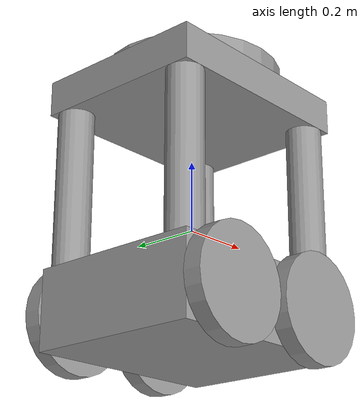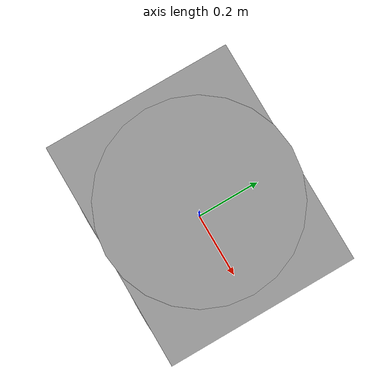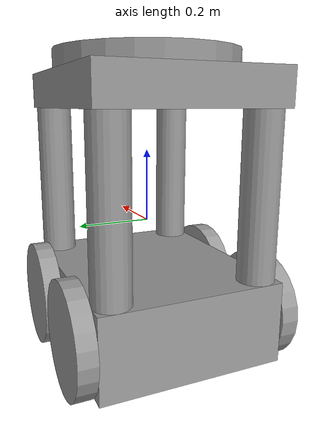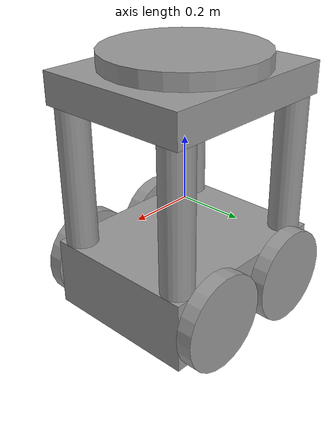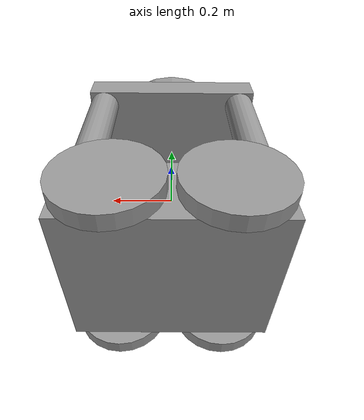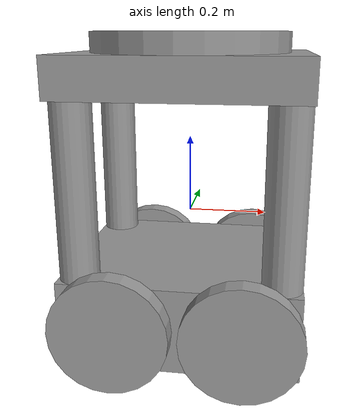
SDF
<?xml version='1.0'?>
<sdf version='1.6'>
  <model name='exp_robot'>
    <link name='link_0'>
      <pose frame=''>-0 -0 -0.235909 0 -0 0</pose>
      <inertial>
        <mass>1</mass>
        <inertia>
          <ixx>0.166667</ixx>
          <ixy>0</ixy>
          <ixz>0</ixz>
          <iyy>0.166667</iyy>
          <iyz>0</iyz>
          <izz>0.166667</izz>
        </inertia>
        <pose frame=''>0 0 0 0 -0 0</pose>
      </inertial>
      <self_collide>0</self_collide>
      <kinematic>0</kinematic>
      <gravity>1</gravity>
      <visual name='visual'>
        <pose frame=''>0 0 0 0 -0 0</pose>
        <geometry>
          <box>
            <size>0.6 0.5 0.22</size>
          </box>
        </geometry>
        <material>
          <lighting>1</lighting>
          <script>
            <uri>file://media/materials/scripts/gazebo.material</uri>
            <name>Gazebo/Grey</name>
          </script>
          <ambient>0.1 0.1 0.1 1</ambient>
          <diffuse>0.7 0.7 0.7 1</diffuse>
          <specular>0.01 0.01 0.01 1</specular>
          <emissive>0 0 0 1</emissive>
          <shader type='vertex'>
            <normal_map>__default__</normal_map>
          </shader>
        </material>
        <transparency>0</transparency>
        <cast_shadows>1</cast_shadows>
      </visual>
      <collision name='collision'>
        <laser_retro>0</laser_retro>
        <max_contacts>10</max_contacts>
        <pose frame=''>0 0 0 0 -0 0</pose>
        <geometry>
          <box>
            <size>0.6 0.5 0.22</size>
          </box>
        </geometry>
        <surface>
          <friction>
            <ode>
              <mu>1</mu>
              <mu2>1</mu2>
              <fdir1>0 0 0</fdir1>
              <slip1>0</slip1>
              <slip2>0</slip2>
            </ode>
            <torsional>
              <coefficient>1</coefficient>
              <patch_radius>0</patch_radius>
              <surface_radius>0</surface_radius>
              <use_patch_radius>1</use_patch_radius>
              <ode>
                <slip>0</slip>
              </ode>
            </torsional>
          </friction>
          <bounce>
            <restitution_coefficient>0</restitution_coefficient>
            <threshold>1e+06</threshold>
          </bounce>
          <contact>
            <collide_without_contact>0</collide_without_contact>
            <collide_without_contact_bitmask>1</collide_without_contact_bitmask>
            <collide_bitmask>1</collide_bitmask>
            <ode>
              <soft_cfm>0</soft_cfm>
              <soft_erp>0.2</soft_erp>
              <kp>1e+13</kp>
              <kd>1</kd>
              <max_vel>0.01</max_vel>
              <min_depth>0</min_depth>
            </ode>
            <bullet>
              <split_impulse>1</split_impulse>
              <split_impulse_penetration_threshold>-0.01</split_impulse_penetration_threshold>
              <soft_cfm>0</soft_cfm>
              <soft_erp>0.2</soft_erp>
              <kp>1e+13</kp>
              <kd>1</kd>
            </bullet>
          </contact>
        </surface>
      </collision>
    </link>
    <link name='link_0_clone'>
      <pose frame=''>0 -0 0.364091 0 -0 0</pose>
      <inertial>
        <mass>1</mass>
        <inertia>
          <ixx>0.166667</ixx>
          <ixy>0</ixy>
          <ixz>0</ixz>
          <iyy>0.166667</iyy>
          <iyz>0</iyz>
          <izz>0.166667</izz>
        </inertia>
        <pose frame=''>0 0 0 0 -0 0</pose>
      </inertial>
      <self_collide>0</self_collide>
      <kinematic>0</kinematic>
      <visual name='visual'>
        <pose frame=''>0 0 0 0 -0 0</pose>
        <geometry>
          <box>
            <size>0.6 0.5 0.1</size>
          </box>
        </geometry>
        <material>
          <lighting>1</lighting>
          <script>
            <uri>file://media/materials/scripts/gazebo.material</uri>
            <name>Gazebo/Grey</name>
          </script>
          <ambient>0.3 0.3 0.3 1</ambient>
          <diffuse>0.7 0.7 0.7 1</diffuse>
          <specular>0.01 0.01 0.01 1</specular>
          <emissive>0 0 0 1</emissive>
          <shader type='vertex'>
            <normal_map>__default__</normal_map>
          </shader>
        </material>
        <transparency>0</transparency>
        <cast_shadows>1</cast_shadows>
      </visual>
      <collision name='collision'>
        <laser_retro>0</laser_retro>
        <max_contacts>10</max_contacts>
        <pose frame=''>0 0 0 0 -0 0</pose>
        <geometry>
          <box>
            <size>0.6 0.5 0.1</size>
          </box>
        </geometry>
        <surface>
          <friction>
            <ode>
              <mu>1</mu>
              <mu2>1</mu2>
              <fdir1>0 0 0</fdir1>
              <slip1>0</slip1>
              <slip2>0</slip2>
            </ode>
            <torsional>
              <coefficient>1</coefficient>
              <patch_radius>0</patch_radius>
              <surface_radius>0</surface_radius>
              <use_patch_radius>1</use_patch_radius>
              <ode>
                <slip>0</slip>
              </ode>
            </torsional>
          </friction>
          <bounce>
            <restitution_coefficient>0</restitution_coefficient>
            <threshold>1e+06</threshold>
          </bounce>
          <contact>
            <collide_without_contact>0</collide_without_contact>
            <collide_without_contact_bitmask>1</collide_without_contact_bitmask>
            <collide_bitmask>1</collide_bitmask>
            <ode>
              <soft_cfm>0</soft_cfm>
              <soft_erp>0.2</soft_erp>
              <kp>1e+13</kp>
              <kd>1</kd>
              <max_vel>0.01</max_vel>
              <min_depth>0</min_depth>
            </ode>
            <bullet>
              <split_impulse>1</split_impulse>
              <split_impulse_penetration_threshold>-0.01</split_impulse_penetration_threshold>
              <soft_cfm>0</soft_cfm>
              <soft_erp>0.2</soft_erp>
              <kp>1e+13</kp>
              <kd>1</kd>
            </bullet>
          </contact>
        </surface>
      </collision>
    </link>
    <link name='link_1'>
      <pose frame=''>-0.25 0.2 0.094091 0 -0 0</pose>
      <inertial>
        <mass>1</mass>
        <inertia>
          <ixx>0.145833</ixx>
          <ixy>0</ixy>
          <ixz>0</ixz>
          <iyy>0.145833</iyy>
          <iyz>0</iyz>
          <izz>0.125</izz>
        </inertia>
        <pose frame=''>0 0 0 0 -0 0</pose>
      </inertial>
      <self_collide>0</self_collide>
      <kinematic>0</kinematic>
      <visual name='visual'>
        <pose frame=''>0 0 0 0 -0 0</pose>
        <geometry>
          <cylinder>
            <radius>0.05</radius>
            <length>0.44</length>
          </cylinder>
        </geometry>
        <material>
          <lighting>1</lighting>
          <script>
            <uri>file://media/materials/scripts/gazebo.material</uri>
            <name>Gazebo/Grey</name>
          </script>
          <ambient>0.3 0.3 0.3 1</ambient>
          <diffuse>0.7 0.7 0.7 1</diffuse>
          <specular>0.01 0.01 0.01 1</specular>
          <emissive>0 0 0 1</emissive>
          <shader type='vertex'>
            <normal_map>__default__</normal_map>
          </shader>
        </material>
        <transparency>0</transparency>
        <cast_shadows>1</cast_shadows>
      </visual>
      <collision name='collision'>
        <laser_retro>0</laser_retro>
        <max_contacts>10</max_contacts>
        <pose frame=''>0 0 0 0 -0 0</pose>
        <geometry>
          <cylinder>
            <radius>0.05</radius>
            <length>0.44</length>
          </cylinder>
        </geometry>
        <surface>
          <friction>
            <ode>
              <mu>1</mu>
              <mu2>1</mu2>
              <fdir1>0 0 0</fdir1>
              <slip1>0</slip1>
              <slip2>0</slip2>
            </ode>
            <torsional>
              <coefficient>1</coefficient>
              <patch_radius>0</patch_radius>
              <surface_radius>0</surface_radius>
              <use_patch_radius>1</use_patch_radius>
              <ode>
                <slip>0</slip>
              </ode>
            </torsional>
          </friction>
          <bounce>
            <restitution_coefficient>0</restitution_coefficient>
            <threshold>1e+06</threshold>
          </bounce>
          <contact>
            <collide_without_contact>0</collide_without_contact>
            <collide_without_contact_bitmask>1</collide_without_contact_bitmask>
            <collide_bitmask>1</collide_bitmask>
            <ode>
              <soft_cfm>0</soft_cfm>
              <soft_erp>0.2</soft_erp>
              <kp>1e+13</kp>
              <kd>1</kd>
              <max_vel>0.01</max_vel>
              <min_depth>0</min_depth>
            </ode>
            <bullet>
              <split_impulse>1</split_impulse>
              <split_impulse_penetration_threshold>-0.01</split_impulse_penetration_threshold>
              <soft_cfm>0</soft_cfm>
              <soft_erp>0.2</soft_erp>
              <kp>1e+13</kp>
              <kd>1</kd>
            </bullet>
          </contact>
        </surface>
      </collision>
    </link>
    <link name='link_1_clone'>
      <pose frame=''>-0.25 -0.2 0.094091 0 -0 0</pose>
      <inertial>
        <mass>1</mass>
        <inertia>
          <ixx>0.145833</ixx>
          <ixy>0</ixy>
          <ixz>0</ixz>
          <iyy>0.145833</iyy>
          <iyz>0</iyz>
          <izz>0.125</izz>
        </inertia>
        <pose frame=''>0 0 0 0 -0 0</pose>
      </inertial>
      <self_collide>0</self_collide>
      <kinematic>0</kinematic>
      <visual name='visual'>
        <pose frame=''>0 0 0 0 -0 0</pose>
        <geometry>
          <cylinder>
            <radius>0.05</radius>
            <length>0.44</length>
          </cylinder>
        </geometry>
        <material>
          <lighting>1</lighting>
          <script>
            <uri>file://media/materials/scripts/gazebo.material</uri>
            <name>Gazebo/Grey</name>
          </script>
          <ambient>0.3 0.3 0.3 1</ambient>
          <diffuse>0.7 0.7 0.7 1</diffuse>
          <specular>0.01 0.01 0.01 1</specular>
          <emissive>0 0 0 1</emissive>
          <shader type='vertex'>
            <normal_map>__default__</normal_map>
          </shader>
        </material>
        <transparency>0</transparency>
        <cast_shadows>1</cast_shadows>
      </visual>
      <collision name='collision'>
        <laser_retro>0</laser_retro>
        <max_contacts>10</max_contacts>
        <pose frame=''>0 0 0 0 -0 0</pose>
        <geometry>
          <cylinder>
            <radius>0.05</radius>
            <length>0.44</length>
          </cylinder>
        </geometry>
        <surface>
          <friction>
            <ode>
              <mu>1</mu>
              <mu2>1</mu2>
              <fdir1>0 0 0</fdir1>
              <slip1>0</slip1>
              <slip2>0</slip2>
            </ode>
            <torsional>
              <coefficient>1</coefficient>
              <patch_radius>0</patch_radius>
              <surface_radius>0</surface_radius>
              <use_patch_radius>1</use_patch_radius>
              <ode>
                <slip>0</slip>
              </ode>
            </torsional>
          </friction>
          <bounce>
            <restitution_coefficient>0</restitution_coefficient>
            <threshold>1e+06</threshold>
          </bounce>
          <contact>
            <collide_without_contact>0</collide_without_contact>
            <collide_without_contact_bitmask>1</collide_without_contact_bitmask>
            <collide_bitmask>1</collide_bitmask>
            <ode>
              <soft_cfm>0</soft_cfm>
              <soft_erp>0.2</soft_erp>
              <kp>1e+13</kp>
              <kd>1</kd>
              <max_vel>0.01</max_vel>
              <min_depth>0</min_depth>
            </ode>
            <bullet>
              <split_impulse>1</split_impulse>
              <split_impulse_penetration_threshold>-0.01</split_impulse_penetration_threshold>
              <soft_cfm>0</soft_cfm>
              <soft_erp>0.2</soft_erp>
              <kp>1e+13</kp>
              <kd>1</kd>
            </bullet>
          </contact>
        </surface>
      </collision>
    </link>
    <link name='link_1_clone_0'>
      <pose frame=''>0.25 -0.2 0.094091 0 -0 0</pose>
      <inertial>
        <mass>1</mass>
        <inertia>
          <ixx>0.145833</ixx>
          <ixy>0</ixy>
          <ixz>0</ixz>
          <iyy>0.145833</iyy>
          <iyz>0</iyz>
          <izz>0.125</izz>
        </inertia>
        <pose frame=''>0 0 0 0 -0 0</pose>
      </inertial>
      <self_collide>0</self_collide>
      <kinematic>0</kinematic>
      <visual name='visual'>
        <pose frame=''>0 0 0 0 -0 0</pose>
        <geometry>
          <cylinder>
            <radius>0.05</radius>
            <length>0.44</length>
          </cylinder>
        </geometry>
        <material>
          <lighting>1</lighting>
          <script>
            <uri>file://media/materials/scripts/gazebo.material</uri>
            <name>Gazebo/Grey</name>
          </script>
          <ambient>0.3 0.3 0.3 1</ambient>
          <diffuse>0.7 0.7 0.7 1</diffuse>
          <specular>0.01 0.01 0.01 1</specular>
          <emissive>0 0 0 1</emissive>
          <shader type='vertex'>
            <normal_map>__default__</normal_map>
          </shader>
        </material>
        <transparency>0</transparency>
        <cast_shadows>1</cast_shadows>
      </visual>
      <collision name='collision'>
        <laser_retro>0</laser_retro>
        <max_contacts>10</max_contacts>
        <pose frame=''>0 0 0 0 -0 0</pose>
        <geometry>
          <cylinder>
            <radius>0.05</radius>
            <length>0.44</length>
          </cylinder>
        </geometry>
        <surface>
          <friction>
            <ode>
              <mu>1</mu>
              <mu2>1</mu2>
              <fdir1>0 0 0</fdir1>
              <slip1>0</slip1>
              <slip2>0</slip2>
            </ode>
            <torsional>
              <coefficient>1</coefficient>
              <patch_radius>0</patch_radius>
              <surface_radius>0</surface_radius>
              <use_patch_radius>1</use_patch_radius>
              <ode>
                <slip>0</slip>
              </ode>
            </torsional>
          </friction>
          <bounce>
            <restitution_coefficient>0</restitution_coefficient>
            <threshold>1e+06</threshold>
          </bounce>
          <contact>
            <collide_without_contact>0</collide_without_contact>
            <collide_without_contact_bitmask>1</collide_without_contact_bitmask>
            <collide_bitmask>1</collide_bitmask>
            <ode>
              <soft_cfm>0</soft_cfm>
              <soft_erp>0.2</soft_erp>
              <kp>1e+13</kp>
              <kd>1</kd>
              <max_vel>0.01</max_vel>
              <min_depth>0</min_depth>
            </ode>
            <bullet>
              <split_impulse>1</split_impulse>
              <split_impulse_penetration_threshold>-0.01</split_impulse_penetration_threshold>
              <soft_cfm>0</soft_cfm>
              <soft_erp>0.2</soft_erp>
              <kp>1e+13</kp>
              <kd>1</kd>
            </bullet>
          </contact>
        </surface>
      </collision>
    </link>
    <link name='link_1_clone_1'>
      <pose frame=''>0.25 0.2 0.094091 0 -0 0</pose>
      <inertial>
        <mass>1</mass>
        <inertia>
          <ixx>0.145833</ixx>
          <ixy>0</ixy>
          <ixz>0</ixz>
          <iyy>0.145833</iyy>
          <iyz>0</iyz>
          <izz>0.125</izz>
        </inertia>
        <pose frame=''>0 0 0 0 -0 0</pose>
      </inertial>
      <self_collide>0</self_collide>
      <kinematic>0</kinematic>
      <visual name='visual'>
        <pose frame=''>0 0 0 0 -0 0</pose>
        <geometry>
          <cylinder>
            <radius>0.05</radius>
            <length>0.44</length>
          </cylinder>
        </geometry>
        <material>
          <lighting>1</lighting>
          <script>
            <uri>file://media/materials/scripts/gazebo.material</uri>
            <name>Gazebo/Grey</name>
          </script>
          <ambient>0.3 0.3 0.3 1</ambient>
          <diffuse>0.7 0.7 0.7 1</diffuse>
          <specular>0.01 0.01 0.01 1</specular>
          <emissive>0 0 0 1</emissive>
          <shader type='vertex'>
            <normal_map>__default__</normal_map>
          </shader>
        </material>
        <transparency>0</transparency>
        <cast_shadows>1</cast_shadows>
      </visual>
      <collision name='collision'>
        <laser_retro>0</laser_retro>
        <max_contacts>10</max_contacts>
        <pose frame=''>0 0 0 0 -0 0</pose>
        <geometry>
          <cylinder>
            <radius>0.05</radius>
            <length>0.44</length>
          </cylinder>
        </geometry>
        <surface>
          <friction>
            <ode>
              <mu>1</mu>
              <mu2>1</mu2>
              <fdir1>0 0 0</fdir1>
              <slip1>0</slip1>
              <slip2>0</slip2>
            </ode>
            <torsional>
              <coefficient>1</coefficient>
              <patch_radius>0</patch_radius>
              <surface_radius>0</surface_radius>
              <use_patch_radius>1</use_patch_radius>
              <ode>
                <slip>0</slip>
              </ode>
            </torsional>
          </friction>
          <bounce>
            <restitution_coefficient>0</restitution_coefficient>
            <threshold>1e+06</threshold>
          </bounce>
          <contact>
            <collide_without_contact>0</collide_without_contact>
            <collide_without_contact_bitmask>1</collide_without_contact_bitmask>
            <collide_bitmask>1</collide_bitmask>
            <ode>
              <soft_cfm>0</soft_cfm>
              <soft_erp>0.2</soft_erp>
              <kp>1e+13</kp>
              <kd>1</kd>
              <max_vel>0.01</max_vel>
              <min_depth>0</min_depth>
            </ode>
            <bullet>
              <split_impulse>1</split_impulse>
              <split_impulse_penetration_threshold>-0.01</split_impulse_penetration_threshold>
              <soft_cfm>0</soft_cfm>
              <soft_erp>0.2</soft_erp>
              <kp>1e+13</kp>
              <kd>1</kd>
            </bullet>
          </contact>
        </surface>
      </collision>
    </link>
    <link name='link_2'>
      <pose frame=''>-0 0 0.439091 0 -0 0</pose>
      <inertial>
        <mass>1</mass>
        <inertia>
          <ixx>0.145833</ixx>
          <ixy>0</ixy>
          <ixz>0</ixz>
          <iyy>0.145833</iyy>
          <iyz>0</iyz>
          <izz>0.125</izz>
        </inertia>
        <pose frame=''>0 0 0 0 -0 0</pose>
      </inertial>
      <self_collide>0</self_collide>
      <kinematic>0</kinematic>
      <visual name='visual'>
        <pose frame=''>0 0 0 0 -0 0</pose>
        <geometry>
          <cylinder>
            <radius>0.25</radius>
            <length>0.05</length>
          </cylinder>
        </geometry>
        <material>
          <lighting>1</lighting>
          <script>
            <uri>file://media/materials/scripts/gazebo.material</uri>
            <name>Gazebo/Grey</name>
          </script>
          <ambient>0.3 0.3 0.3 1</ambient>
          <diffuse>0.7 0.7 0.7 1</diffuse>
          <specular>0.01 0.01 0.01 1</specular>
          <emissive>0 0 0 1</emissive>
          <shader type='vertex'>
            <normal_map>__default__</normal_map>
          </shader>
        </material>
        <transparency>0</transparency>
        <cast_shadows>1</cast_shadows>
      </visual>
      <collision name='collision'>
        <laser_retro>0</laser_retro>
        <max_contacts>10</max_contacts>
        <pose frame=''>0 0 0 0 -0 0</pose>
        <geometry>
          <cylinder>
            <radius>0.25</radius>
            <length>0.05</length>
          </cylinder>
        </geometry>
        <surface>
          <friction>
            <ode>
              <mu>1</mu>
              <mu2>1</mu2>
              <fdir1>0 0 0</fdir1>
              <slip1>0</slip1>
              <slip2>0</slip2>
            </ode>
            <torsional>
              <coefficient>1</coefficient>
              <patch_radius>0</patch_radius>
              <surface_radius>0</surface_radius>
              <use_patch_radius>1</use_patch_radius>
              <ode>
                <slip>0</slip>
              </ode>
            </torsional>
          </friction>
          <bounce>
            <restitution_coefficient>0</restitution_coefficient>
            <threshold>1e+06</threshold>
          </bounce>
          <contact>
            <collide_without_contact>0</collide_without_contact>
            <collide_without_contact_bitmask>1</collide_without_contact_bitmask>
            <collide_bitmask>1</collide_bitmask>
            <ode>
              <soft_cfm>0</soft_cfm>
              <soft_erp>0.2</soft_erp>
              <kp>1e+13</kp>
              <kd>1</kd>
              <max_vel>0.01</max_vel>
              <min_depth>0</min_depth>
            </ode>
            <bullet>
              <split_impulse>1</split_impulse>
              <split_impulse_penetration_threshold>-0.01</split_impulse_penetration_threshold>
              <soft_cfm>0</soft_cfm>
              <soft_erp>0.2</soft_erp>
              <kp>1e+13</kp>
              <kd>1</kd>
            </bullet>
          </contact>
        </surface>
      </collision>
    </link>
    <link name='link_3'>
      <pose frame=''>0.16 -0.275014 -0.235909 1.5707 -0 0</pose>
      <inertial>
        <mass>1</mass>
        <inertia>
          <ixx>0.145833</ixx>
          <ixy>0</ixy>
          <ixz>0</ixz>
          <iyy>0.145833</iyy>
          <iyz>0</iyz>
          <izz>0.125</izz>
        </inertia>
        <pose frame=''>0 0 0 0 -0 0</pose>
      </inertial>
      <self_collide>0</self_collide>
      <kinematic>0</kinematic>
      <visual name='visual'>
        <pose frame=''>0 0 0 0 -0 0</pose>
        <geometry>
          <cylinder>
            <radius>0.15</radius>
            <length>0.05</length>
          </cylinder>
        </geometry>
        <material>
          <lighting>1</lighting>
          <script>
            <uri>file://media/materials/scripts/gazebo.material</uri>
            <name>Gazebo/Grey</name>
          </script>
          <ambient>0.3 0.3 0.3 1</ambient>
          <diffuse>0.7 0.7 0.7 1</diffuse>
          <specular>0.01 0.01 0.01 1</specular>
          <emissive>0 0 0 1</emissive>
          <shader type='vertex'>
            <normal_map>__default__</normal_map>
          </shader>
        </material>
        <transparency>0</transparency>
        <cast_shadows>1</cast_shadows>
      </visual>
      <collision name='collision'>
        <laser_retro>0</laser_retro>
        <max_contacts>10</max_contacts>
        <pose frame=''>0 0 0 0 -0 0</pose>
        <geometry>
          <cylinder>
            <radius>0.15</radius>
            <length>0.05</length>
          </cylinder>
        </geometry>
        <surface>
          <friction>
            <ode>
              <mu>1</mu>
              <mu2>1</mu2>
              <fdir1>0 0 0</fdir1>
              <slip1>0</slip1>
              <slip2>0</slip2>
            </ode>
            <torsional>
              <coefficient>1</coefficient>
              <patch_radius>0</patch_radius>
              <surface_radius>0</surface_radius>
              <use_patch_radius>1</use_patch_radius>
              <ode>
                <slip>0</slip>
              </ode>
            </torsional>
          </friction>
          <bounce>
            <restitution_coefficient>0</restitution_coefficient>
            <threshold>1e+06</threshold>
          </bounce>
          <contact>
            <collide_without_contact>0</collide_without_contact>
            <collide_without_contact_bitmask>1</collide_without_contact_bitmask>
            <collide_bitmask>1</collide_bitmask>
            <ode>
              <soft_cfm>0</soft_cfm>
              <soft_erp>0.2</soft_erp>
              <kp>1e+13</kp>
              <kd>1</kd>
              <max_vel>0.01</max_vel>
              <min_depth>0</min_depth>
            </ode>
            <bullet>
              <split_impulse>1</split_impulse>
              <split_impulse_penetration_threshold>-0.01</split_impulse_penetration_threshold>
              <soft_cfm>0</soft_cfm>
              <soft_erp>0.2</soft_erp>
              <kp>1e+13</kp>
              <kd>1</kd>
            </bullet>
          </contact>
        </surface>
      </collision>
    </link>
    <link name='link_3_clone'>
      <pose frame=''>0.16 0.275014 -0.235909 1.5707 -0 0</pose>
      <inertial>
        <mass>1</mass>
        <inertia>
          <ixx>0.145833</ixx>
          <ixy>0</ixy>
          <ixz>0</ixz>
          <iyy>0.145833</iyy>
          <iyz>0</iyz>
          <izz>0.125</izz>
        </inertia>
        <pose frame=''>0 0 0 0 -0 0</pose>
      </inertial>
      <self_collide>0</self_collide>
      <kinematic>0</kinematic>
      <visual name='visual'>
        <pose frame=''>0 0 0 0 -0 0</pose>
        <geometry>
          <cylinder>
            <radius>0.15</radius>
            <length>0.05</length>
          </cylinder>
        </geometry>
        <material>
          <lighting>1</lighting>
          <script>
            <uri>file://media/materials/scripts/gazebo.material</uri>
            <name>Gazebo/Grey</name>
          </script>
          <ambient>0.3 0.3 0.3 1</ambient>
          <diffuse>0.7 0.7 0.7 1</diffuse>
          <specular>0.01 0.01 0.01 1</specular>
          <emissive>0 0 0 1</emissive>
          <shader type='vertex'>
            <normal_map>__default__</normal_map>
          </shader>
        </material>
        <transparency>0</transparency>
        <cast_shadows>1</cast_shadows>
      </visual>
      <collision name='collision'>
        <laser_retro>0</laser_retro>
        <max_contacts>10</max_contacts>
        <pose frame=''>0 0 0 0 -0 0</pose>
        <geometry>
          <cylinder>
            <radius>0.15</radius>
            <length>0.05</length>
          </cylinder>
        </geometry>
        <surface>
          <friction>
            <ode>
              <mu>1</mu>
              <mu2>1</mu2>
              <fdir1>0 0 0</fdir1>
              <slip1>0</slip1>
              <slip2>0</slip2>
            </ode>
            <torsional>
              <coefficient>1</coefficient>
              <patch_radius>0</patch_radius>
              <surface_radius>0</surface_radius>
              <use_patch_radius>1</use_patch_radius>
              <ode>
                <slip>0</slip>
              </ode>
            </torsional>
          </friction>
          <bounce>
            <restitution_coefficient>0</restitution_coefficient>
            <threshold>1e+06</threshold>
          </bounce>
          <contact>
            <collide_without_contact>0</collide_without_contact>
            <collide_without_contact_bitmask>1</collide_without_contact_bitmask>
            <collide_bitmask>1</collide_bitmask>
            <ode>
              <soft_cfm>0</soft_cfm>
              <soft_erp>0.2</soft_erp>
              <kp>1e+13</kp>
              <kd>1</kd>
              <max_vel>0.01</max_vel>
              <min_depth>0</min_depth>
            </ode>
            <bullet>
              <split_impulse>1</split_impulse>
              <split_impulse_penetration_threshold>-0.01</split_impulse_penetration_threshold>
              <soft_cfm>0</soft_cfm>
              <soft_erp>0.2</soft_erp>
              <kp>1e+13</kp>
              <kd>1</kd>
            </bullet>
          </contact>
        </surface>
      </collision>
    </link>
    <link name='link_3_clone_0'>
      <pose frame=''>-0.16 0.275014 -0.235909 1.5707 -0 0</pose>
      <inertial>
        <mass>1</mass>
        <inertia>
          <ixx>0.145833</ixx>
          <ixy>0</ixy>
          <ixz>0</ixz>
          <iyy>0.145833</iyy>
          <iyz>0</iyz>
          <izz>0.125</izz>
        </inertia>
        <pose frame=''>0 0 0 0 -0 0</pose>
      </inertial>
      <self_collide>0</self_collide>
      <kinematic>0</kinematic>
      <visual name='visual'>
        <pose frame=''>0 0 0 0 -0 0</pose>
        <geometry>
          <cylinder>
            <radius>0.15</radius>
            <length>0.05</length>
          </cylinder>
        </geometry>
        <material>
          <lighting>1</lighting>
          <script>
            <uri>file://media/materials/scripts/gazebo.material</uri>
            <name>Gazebo/Grey</name>
          </script>
          <ambient>0.3 0.3 0.3 1</ambient>
          <diffuse>0.7 0.7 0.7 1</diffuse>
          <specular>0.01 0.01 0.01 1</specular>
          <emissive>0 0 0 1</emissive>
          <shader type='vertex'>
            <normal_map>__default__</normal_map>
          </shader>
        </material>
        <transparency>0</transparency>
        <cast_shadows>1</cast_shadows>
      </visual>
      <collision name='collision'>
        <laser_retro>0</laser_retro>
        <max_contacts>10</max_contacts>
        <pose frame=''>0 0 0 0 -0 0</pose>
        <geometry>
          <cylinder>
            <radius>0.15</radius>
            <length>0.05</length>
          </cylinder>
        </geometry>
        <surface>
          <friction>
            <ode>
              <mu>1</mu>
              <mu2>1</mu2>
              <fdir1>0 0 0</fdir1>
              <slip1>0</slip1>
              <slip2>0</slip2>
            </ode>
            <torsional>
              <coefficient>1</coefficient>
              <patch_radius>0</patch_radius>
              <surface_radius>0</surface_radius>
              <use_patch_radius>1</use_patch_radius>
              <ode>
                <slip>0</slip>
              </ode>
            </torsional>
          </friction>
          <bounce>
            <restitution_coefficient>0</restitution_coefficient>
            <threshold>1e+06</threshold>
          </bounce>
          <contact>
            <collide_without_contact>0</collide_without_contact>
            <collide_without_contact_bitmask>1</collide_without_contact_bitmask>
            <collide_bitmask>1</collide_bitmask>
            <ode>
              <soft_cfm>0</soft_cfm>
              <soft_erp>0.2</soft_erp>
              <kp>1e+13</kp>
              <kd>1</kd>
              <max_vel>0.01</max_vel>
              <min_depth>0</min_depth>
            </ode>
            <bullet>
              <split_impulse>1</split_impulse>
              <split_impulse_penetration_threshold>-0.01</split_impulse_penetration_threshold>
              <soft_cfm>0</soft_cfm>
              <soft_erp>0.2</soft_erp>
              <kp>1e+13</kp>
              <kd>1</kd>
            </bullet>
          </contact>
        </surface>
      </collision>
    </link>
    <link name='link_3_clone_1'>
      <pose frame=''>-0.16 -0.275014 -0.235909 1.5707 -0 0</pose>
      <inertial>
        <mass>1</mass>
        <inertia>
          <ixx>0.145833</ixx>
          <ixy>0</ixy>
          <ixz>0</ixz>
          <iyy>0.145833</iyy>
          <iyz>0</iyz>
          <izz>0.125</izz>
        </inertia>
        <pose frame=''>0 0 0 0 -0 0</pose>
      </inertial>
      <self_collide>0</self_collide>
      <kinematic>0</kinematic>
      <visual name='visual'>
        <pose frame=''>0 0 0 0 -0 0</pose>
        <geometry>
          <cylinder>
            <radius>0.15</radius>
            <length>0.05</length>
          </cylinder>
        </geometry>
        <material>
          <lighting>1</lighting>
          <script>
            <uri>file://media/materials/scripts/gazebo.material</uri>
            <name>Gazebo/Grey</name>
          </script>
          <ambient>0.3 0.3 0.3 1</ambient>
          <diffuse>0.7 0.7 0.7 1</diffuse>
          <specular>0.01 0.01 0.01 1</specular>
          <emissive>0 0 0 1</emissive>
          <shader type='vertex'>
            <normal_map>__default__</normal_map>
          </shader>
        </material>
        <transparency>0</transparency>
        <cast_shadows>1</cast_shadows>
      </visual>
      <collision name='collision'>
        <laser_retro>0</laser_retro>
        <max_contacts>10</max_contacts>
        <pose frame=''>0 0 0 0 -0 0</pose>
        <geometry>
          <cylinder>
            <radius>0.15</radius>
            <length>0.05</length>
          </cylinder>
        </geometry>
        <surface>
          <friction>
            <ode>
              <mu>1</mu>
              <mu2>1</mu2>
              <fdir1>0 0 0</fdir1>
              <slip1>0</slip1>
              <slip2>0</slip2>
            </ode>
            <torsional>
              <coefficient>1</coefficient>
              <patch_radius>0</patch_radius>
              <surface_radius>0</surface_radius>
              <use_patch_radius>1</use_patch_radius>
              <ode>
                <slip>0</slip>
              </ode>
            </torsional>
          </friction>
          <bounce>
            <restitution_coefficient>0</restitution_coefficient>
            <threshold>1e+06</threshold>
          </bounce>
          <contact>
            <collide_without_contact>0</collide_without_contact>
            <collide_without_contact_bitmask>1</collide_without_contact_bitmask>
            <collide_bitmask>1</collide_bitmask>
            <ode>
              <soft_cfm>0</soft_cfm>
              <soft_erp>0.2</soft_erp>
              <kp>1e+13</kp>
              <kd>1</kd>
              <max_vel>0.01</max_vel>
              <min_depth>0</min_depth>
            </ode>
            <bullet>
              <split_impulse>1</split_impulse>
              <split_impulse_penetration_threshold>-0.01</split_impulse_penetration_threshold>
              <soft_cfm>0</soft_cfm>
              <soft_erp>0.2</soft_erp>
              <kp>1e+13</kp>
              <kd>1</kd>
            </bullet>
          </contact>
        </surface>
      </collision>
    </link>
    <joint name='link_0_JOINT_0' type='fixed'>
      <parent>link_0</parent>
      <child>link_1_clone_1</child>
      <pose frame=''>0 0 0 0 -0 0</pose>
      <physics>
        <ode>
          <limit>
            <cfm>0</cfm>
            <erp>0.2</erp>
          </limit>
          <suspension>
            <cfm>0</cfm>
            <erp>0.2</erp>
          </suspension>
        </ode>
      </physics>
    </joint>
    <joint name='link_0_JOINT_1' type='fixed'>
      <parent>link_0</parent>
      <child>link_1_clone_0</child>
      <pose frame=''>0 0 0 0 -0 0</pose>
      <physics>
        <ode>
          <limit>
            <cfm>0</cfm>
            <erp>0.2</erp>
          </limit>
          <suspension>
            <cfm>0</cfm>
            <erp>0.2</erp>
          </suspension>
        </ode>
      </physics>
    </joint>
    <joint name='link_0_JOINT_2' type='fixed'>
      <parent>link_0</parent>
      <child>link_1_clone</child>
      <pose frame=''>0 0 0 0 -0 0</pose>
      <physics>
        <ode>
          <limit>
            <cfm>0</cfm>
            <erp>0.2</erp>
          </limit>
          <suspension>
            <cfm>0</cfm>
            <erp>0.2</erp>
          </suspension>
        </ode>
      </physics>
    </joint>
    <joint name='link_0_JOINT_3' type='fixed'>
      <parent>link_0</parent>
      <child>link_1</child>
      <pose frame=''>0 0 0 0 -0 0</pose>
      <physics>
        <ode>
          <limit>
            <cfm>0</cfm>
            <erp>0.2</erp>
          </limit>
          <suspension>
            <cfm>0</cfm>
            <erp>0.2</erp>
          </suspension>
        </ode>
      </physics>
    </joint>
    <joint name='link_0_JOINT_4' type='fixed'>
      <parent>link_0</parent>
      <child>link_0_clone</child>
      <pose frame=''>0 0 0 0 -0 0</pose>
      <physics>
        <ode>
          <limit>
            <cfm>0</cfm>
            <erp>0.2</erp>
          </limit>
          <suspension>
            <cfm>0</cfm>
            <erp>0.2</erp>
          </suspension>
        </ode>
      </physics>
    </joint>
    <joint name='link_0_JOINT_6' type='revolute'>
      <parent>link_0</parent>
      <child>link_3</child>
      <pose frame=''>0 0 0 0 -0 0</pose>
      <axis>
        <xyz>0 0 1</xyz>
        <use_parent_model_frame>0</use_parent_model_frame>
        <limit>
          <lower>-1.79769e+308</lower>
          <upper>1.79769e+308</upper>
          <effort>-1</effort>
          <velocity>-1</velocity>
        </limit>
        <dynamics>
          <spring_reference>0</spring_reference>
          <spring_stiffness>0</spring_stiffness>
          <damping>0</damping>
          <friction>0</friction>
        </dynamics>
      </axis>
      <physics>
        <ode>
          <limit>
            <cfm>0</cfm>
            <erp>0.2</erp>
          </limit>
          <suspension>
            <cfm>0</cfm>
            <erp>0.2</erp>
          </suspension>
        </ode>
      </physics>
    </joint>
    <joint name='link_0_JOINT_7' type='revolute'>
      <parent>link_0</parent>
      <child>link_3_clone_1</child>
      <pose frame=''>0 0 0 0 -0 0</pose>
      <axis>
        <xyz>0 0 1</xyz>
        <use_parent_model_frame>0</use_parent_model_frame>
        <limit>
          <lower>-1.79769e+308</lower>
          <upper>1.79769e+308</upper>
          <effort>-1</effort>
          <velocity>-1</velocity>
        </limit>
        <dynamics>
          <spring_reference>0</spring_reference>
          <spring_stiffness>0</spring_stiffness>
          <damping>0</damping>
          <friction>0</friction>
        </dynamics>
      </axis>
      <physics>
        <ode>
          <limit>
            <cfm>0</cfm>
            <erp>0.2</erp>
          </limit>
          <suspension>
            <cfm>0</cfm>
            <erp>0.2</erp>
          </suspension>
        </ode>
      </physics>
    </joint>
    <joint name='link_0_JOINT_8' type='revolute'>
      <parent>link_0</parent>
      <child>link_3_clone</child>
      <pose frame=''>0 0 0 0 -0 0</pose>
      <axis>
        <xyz>0 0 1</xyz>
        <use_parent_model_frame>0</use_parent_model_frame>
        <limit>
          <lower>-1.79769e+308</lower>
          <upper>1.79769e+308</upper>
          <effort>-1</effort>
          <velocity>-1</velocity>
        </limit>
        <dynamics>
          <spring_reference>0</spring_reference>
          <spring_stiffness>0</spring_stiffness>
          <damping>0</damping>
          <friction>0</friction>
        </dynamics>
      </axis>
      <physics>
        <ode>
          <limit>
            <cfm>0</cfm>
            <erp>0.2</erp>
          </limit>
          <suspension>
            <cfm>0</cfm>
            <erp>0.2</erp>
          </suspension>
        </ode>
      </physics>
    </joint>
    <joint name='link_0_JOINT_9' type='revolute'>
      <parent>link_0</parent>
      <child>link_3_clone_0</child>
      <pose frame=''>0 0 0 0 -0 0</pose>
      <axis>
        <xyz>0 0 1</xyz>
        <use_parent_model_frame>0</use_parent_model_frame>
        <limit>
          <lower>-1.79769e+308</lower>
          <upper>1.79769e+308</upper>
          <effort>-1</effort>
          <velocity>-1</velocity>
        </limit>
        <dynamics>
          <spring_reference>0</spring_reference>
          <spring_stiffness>0</spring_stiffness>
          <damping>0</damping>
          <friction>0</friction>
        </dynamics>
      </axis>
      <physics>
        <ode>
          <limit>
            <cfm>0</cfm>
            <erp>0.2</erp>
          </limit>
          <suspension>
            <cfm>0</cfm>
            <erp>0.2</erp>
          </suspension>
        </ode>
      </physics>
    </joint>
    <joint name='link_0_clone_JOINT_5' type='revolute'>
      <parent>link_0_clone</parent>
      <child>link_2</child>
      <pose frame=''>0 0 0 0 -0 0</pose>
      <axis>
        <xyz>0 0 1</xyz>
        <use_parent_model_frame>0</use_parent_model_frame>
        <limit>
          <lower>-1.79769e+308</lower>
          <upper>1.79769e+308</upper>
          <effort>-1</effort>
          <velocity>-1</velocity>
        </limit>
        <dynamics>
          <spring_reference>0</spring_reference>
          <spring_stiffness>0</spring_stiffness>
          <damping>0</damping>
          <friction>0</friction>
        </dynamics>
      </axis>
      <physics>
        <ode>
          <limit>
            <cfm>0</cfm>
            <erp>0.2</erp>
          </limit>
          <suspension>
            <cfm>0</cfm>
            <erp>0.2</erp>
          </suspension>
        </ode>
      </physics>
    </joint>
    <static>0</static>
    <allow_auto_disable>1</allow_auto_disable>
  </model>
</sdf>
